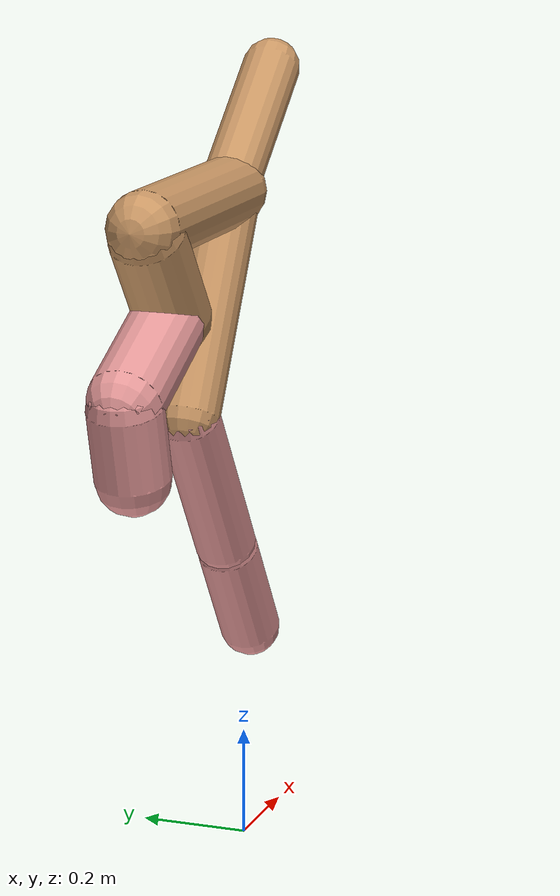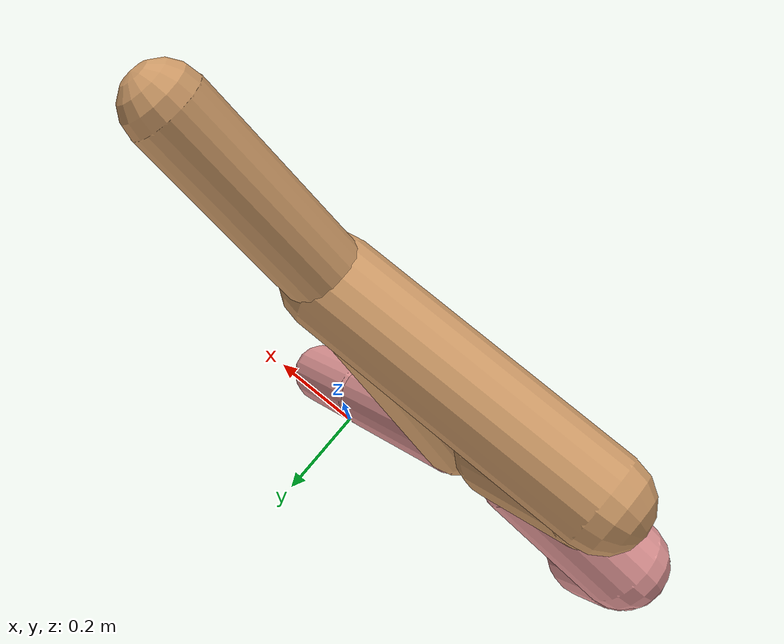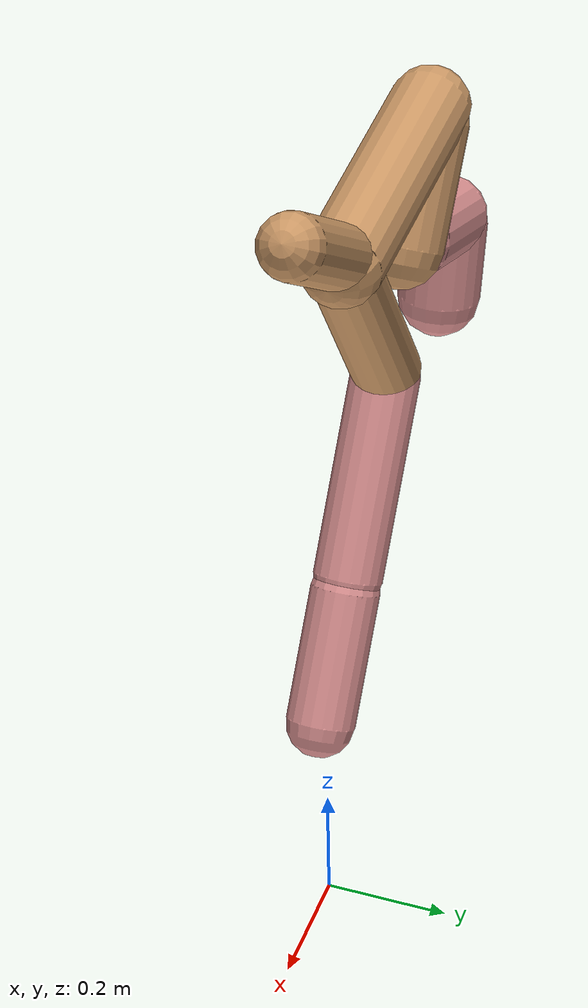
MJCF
<mujoco model="cheetah">
  <compiler angle="radian" coordinate="local" inertiafromgeom="true" settotalmass="14" />
  <default>
    <joint armature=".1" damping=".01" limited="true" solimplimit="0 .8 .03" solreflimit=".02 1" stiffness="8" />
    <geom conaffinity="0" condim="3" contype="1" friction="0.8 .1 .1" rgba="0.8 0.6 .4 1" solimp="0.0 0.8 0.01" solref="0.02 1" />
    <motor ctrllimited="true" ctrlrange="-1 1" />
  </default>
  <size nstack="300000" nuser_geom="1" />
  <option gravity="0 0 -9.81" timestep="0.01" />
  <worldbody>
    <body name="torso" pos="0.0 0.0 1.2328096012073937">
      <joint armature="0" axis="1 0 0" damping="0" limited="false" name="ignorex" pos="0 0 0" stiffness="0" type="slide" />
      <joint armature="0" axis="0 0 1" damping="0" limited="false" name="ignorez" pos="0 0 0" stiffness="0" type="slide" />
      <joint armature="0" axis="0 1 0" damping="0" limited="false" name="ignorey" pos="0 0 0" stiffness="0" type="hinge" />
      <geom fromto="-0.5 0.0 0.0 -0.08052461792140775 0.0 0.0" name="torso" size="0.06485989384411198" type="capsule" />
      <geom axisangle="0 1 0 .87" name="head" pos="0.01947538207859223 0.0 0.1" size="0.05266913466327353 0.15" type="capsule" />

      <body name="bthigh" pos="-.5 0 0">
        <joint axis="0 1 0" damping="6" name="bthigh" pos="0 0 0" range="-.52 1.05" stiffness="240" type="hinge" />
        <geom axisangle="0 1 0 -3.8" name="bthigh" pos="0.0734775819030384 0.0 -0.0955208564739499" size="0.06680397548084885 0.10149999999999999" type="capsule" />
        <body name="bshin" pos="0.10695516380607678 0.0 -0.18104171294789978">
          <joint axis="0 1 0" damping="4.5" name="bshin" pos="0 0 0" range="-.785 .785" stiffness="180" type="hinge" />
          <geom axisangle="0 1 0 -2.03" name="bshin" pos="-0.0997507764050038 0.0 -0.0498753882025019" rgba="0.9 0.6 0.6 1" size="0.06680397548084885 0.105" type="capsule" />
          <body name="bfoot" pos="-0.1995015528100076 0.0 -0.0997507764050038">
            <joint axis="0 1 0" damping="3" name="bfoot" pos="0 0 0" range="-.4 .785" stiffness="120" type="hinge" />
            <geom axisangle="0 1 0 -.27" name="bfoot" pos="0.021667753813597694 0.0 -0.07005907066396588" rgba="0.9 0.6 0.6 1" size="0.06680397548084885 0.0658" type="capsule" />
            <inertial mass="10" />
          </body>
        </body>
      </body>
      <body name="fthigh" pos="-0.08052461792140775 0.0 0.0">
        <joint axis="0 1 0" damping="4.5" name="fthigh" pos="0 0 0" range="-1.5 0.8" stiffness="180" type="hinge" />
        <geom axisangle="0 1 0 .52" name="fthigh" pos="-0.10734953303612627 0.0 -0.18402777091907357" size="0.05551217275066271 0.20712518510521274" type="capsule" />
        <body name="fshin" pos="-0.21469906607225253 0.0 -0.36805554183814715">
          <joint axis="0 1 0" damping="3" name="fshin" pos="0 0 0" range="-1.2 1.1" stiffness="120" type="hinge" />
          <geom axisangle="0 1 0 -.6" name="fshin" pos="0.0995891514450606 0.0 -0.13789267123162235" rgba="0.9 0.6 0.6 1" size="0.05551217275066271 0.1650772151966357" type="capsule" />
          <body name="ffoot" pos="0.1991783028901212 0.0 -0.2757853424632447">
            <joint axis="0 1 0" damping="1.5" name="ffoot" pos="0 0 0" range="-3.1 -0.3" stiffness="60" type="hinge" />
            <geom axisangle="0 1 0 -.6" name="ffoot" pos="0.06609671397534846 0.0 -0.10281711062831983" rgba="0.9 0.6 0.6 1" size="0.05551217275066271 0.10901325531853304" type="capsule" />
            <inertial mass="10" />
          </body>
        </body>
      </body>
    </body>
  </worldbody>
  <actuator>
    <motor gear="120" joint="bthigh" name="bthigh" />
    <motor gear="90" joint="bshin" name="bshin" />
    <motor gear="60" joint="bfoot" name="bfoot" />
    <motor gear="120" joint="fthigh" name="fthigh" />
    <motor gear="60" joint="fshin" name="fshin" />
    <motor gear="30" joint="ffoot" name="ffoot" />
  </actuator>
</mujoco>
